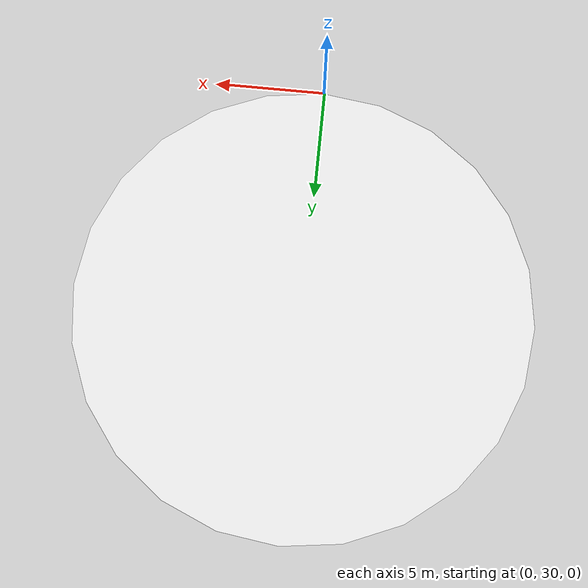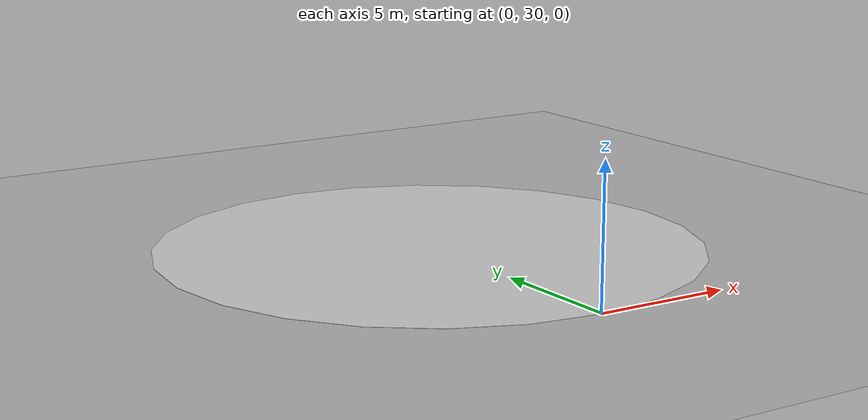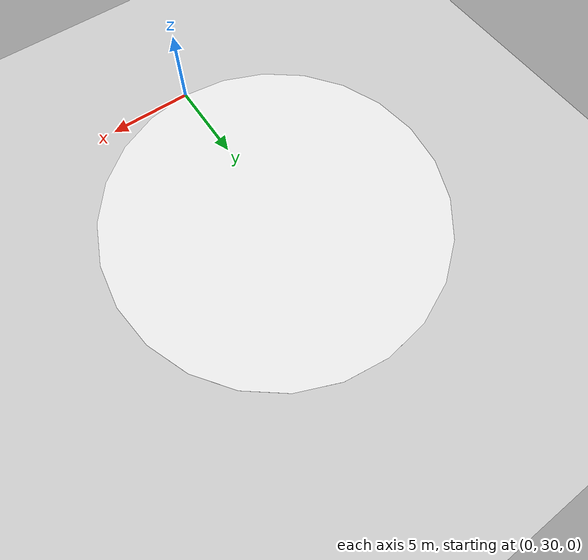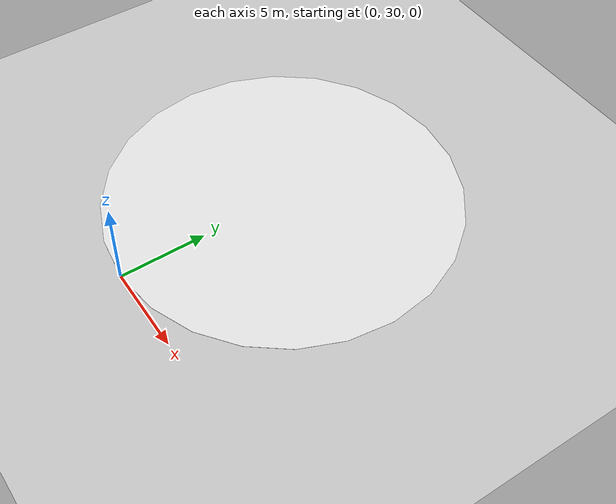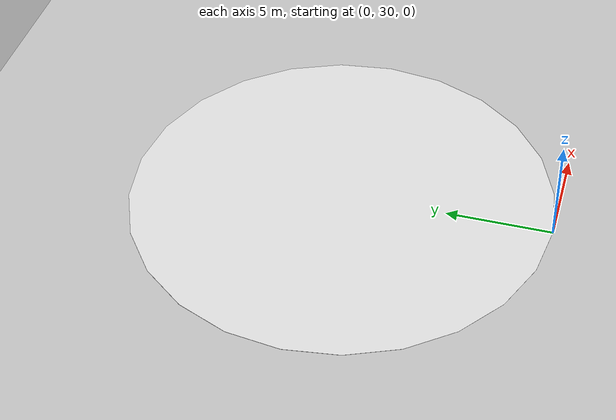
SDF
<?xml version="1.0" ?>
<sdf version="1.4">
  <world name="default">
    <include>
      <uri>model://ground_plane</uri>
    </include>

    <include>
      <uri>model://sun</uri>
    </include>

<model name='BuildingDefaultName'>
    <link name='Goal'>
      <collision name='Goal'>
        <pose>0.0 40.0 0 0 -0 0</pose>
        <geometry>
          <cylinder>
            <radius>0.0</radius>
            <length>0.1</length>
          </cylinder>
        </geometry>
      </collision>
      <visual name='Goal'>
        <pose>0.0 40.0 0.0 0 -0 0</pose>
        <geometry>
          <cylinder>
            <radius>10.0</radius>
            <length>0.01</length>
          </cylinder>
        </geometry>
          <material>
          <script>
            <uri>file://media/materials/scripts/gazebo.material</uri>
            <name>Gazebo/White</name>
          </script>
        </material>
      </visual>
      <velocity_decay>
        <linear>0</linear>
        <angular>0</angular>
      </velocity_decay>
    </link>
    <static>1</static>
</model>
</world>
</sdf>
